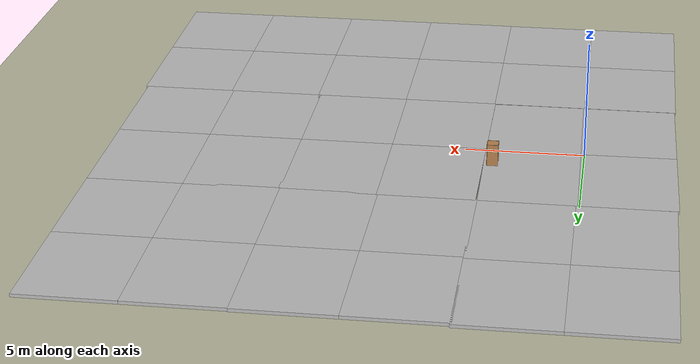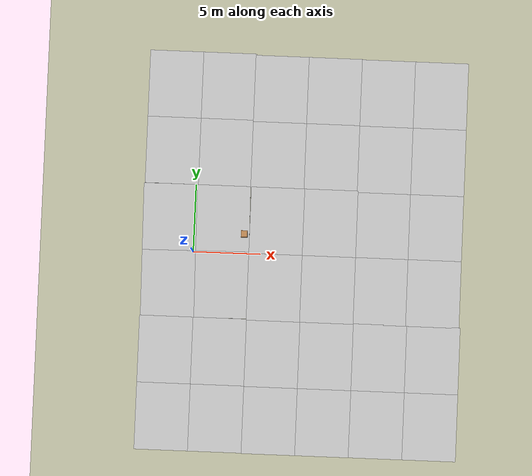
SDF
<sdf version="1.7">
 <world name="default">
  <model name="ground_plane_residential">
   <static>1</static>
   <link name="link">
    <collision name="collision">
     <geometry><plane><normal>0 0 1</normal><size>100 100</size></plane></geometry>
     <surface><friction><ode><mu>100</mu><mu2>50</mu2></ode></friction></surface>
    </collision>
    <visual name="visual">
     <cast_shadows>0</cast_shadows>
     <geometry><plane><normal>0 0 1</normal><size>100 100</size></plane></geometry>
     <material>
      <script><uri>file://media/materials/scripts/gazebo.material</uri><name>Gazebo/Residential</name></script>
     </material>
    </visual>
   </link>
  </model>
  <model name="mud_box">
   <static>1</static>
   <link name="link">
    <collision name="collision"><geometry><box><size>8 10 0.2</size></box></geometry></collision>
    <visual name="visual_1">
     <pose>-2 2.5 0 0 -0 0</pose>
     <cast_shadows>0</cast_shadows>
     <geometry><box><size>4 5 0.2</size></box></geometry>
     <material>
      <script>
       <uri>model://mud_box/materials/scripts</uri>
       <uri>model://mud_box/materials/textures</uri>
       <name>vrc/mud</name>
      </script>
     </material>
    </visual>
    <visual name="visual_2">
     <pose>2 2.5 0 0 -0 0</pose>
     <cast_shadows>0</cast_shadows>
     <geometry><box><size>4 5 0.2</size></box></geometry>
     <material>
      <script>
       <uri>model://mud_box/materials/scripts</uri>
       <uri>model://mud_box/materials/textures</uri>
       <name>vrc/mud</name>
      </script>
     </material>
    </visual>
    <visual name="visual_3">
     <pose>2 -2.5 0 0 -0 0</pose>
     <cast_shadows>0</cast_shadows>
     <geometry><box><size>4 5 0.2</size></box></geometry>
     <material>
      <script>
       <uri>model://mud_box/materials/scripts</uri>
       <uri>model://mud_box/materials/textures</uri>
       <name>vrc/mud</name>
      </script>
     </material>
    </visual>
    <visual name="visual_4">
     <pose>-2 -2.5 0 0 -0 0</pose>
     <cast_shadows>0</cast_shadows>
     <geometry><box><size>4 5 0.2</size></box></geometry>
     <material>
      <script>
       <uri>model://mud_box/materials/scripts</uri>
       <uri>model://mud_box/materials/textures</uri>
       <name>vrc/mud</name>
      </script>
     </material>
    </visual>
   </link>
   <pose>0.145927 0.080727 -0.006154 0 0 -3.12791</pose>
  </model>
  <model name="mud_box_clone">
   <static>1</static>
   <link name="link">
    <collision name="collision"><geometry><box><size>8 10 0.2</size></box></geometry></collision>
    <visual name="visual_1">
     <pose>-2 2.5 0 0 -0 0</pose>
     <cast_shadows>0</cast_shadows>
     <geometry><box><size>4 5 0.2</size></box></geometry>
     <material>
      <script>
       <uri>model://mud_box/materials/scripts</uri>
       <uri>model://mud_box/materials/textures</uri>
       <name>vrc/mud</name>
      </script>
     </material>
    </visual>
    <visual name="visual_2">
     <pose>2 2.5 0 0 -0 0</pose>
     <cast_shadows>0</cast_shadows>
     <geometry><box><size>4 5 0.2</size></box></geometry>
     <material>
      <script>
       <uri>model://mud_box/materials/scripts</uri>
       <uri>model://mud_box/materials/textures</uri>
       <name>vrc/mud</name>
      </script>
     </material>
    </visual>
    <visual name="visual_3">
     <pose>2 -2.5 0 0 -0 0</pose>
     <cast_shadows>0</cast_shadows>
     <geometry><box><size>4 5 0.2</size></box></geometry>
     <material>
      <script>
       <uri>model://mud_box/materials/scripts</uri>
       <uri>model://mud_box/materials/textures</uri>
       <name>vrc/mud</name>
      </script>
     </material>
    </visual>
    <visual name="visual_4">
     <pose>-2 -2.5 0 0 -0 0</pose>
     <cast_shadows>0</cast_shadows>
     <geometry><box><size>4 5 0.2</size></box></geometry>
     <material>
      <script>
       <uri>model://mud_box/materials/scripts</uri>
       <uri>model://mud_box/materials/textures</uri>
       <name>vrc/mud</name>
      </script>
     </material>
    </visual>
   </link>
   <pose>8.13313 0.040261 0 0 -0 0</pose>
  </model>
  <model name="mud_box_clone_0">
   <static>1</static>
   <link name="link">
    <collision name="collision"><geometry><box><size>8 10 0.2</size></box></geometry></collision>
    <visual name="visual_1">
     <pose>-2 2.5 0 0 -0 0</pose>
     <cast_shadows>0</cast_shadows>
     <geometry><box><size>4 5 0.2</size></box></geometry>
     <material>
      <script>
       <uri>model://mud_box/materials/scripts</uri>
       <uri>model://mud_box/materials/textures</uri>
       <name>vrc/mud</name>
      </script>
     </material>
    </visual>
    <visual name="visual_2">
     <pose>2 2.5 0 0 -0 0</pose>
     <cast_shadows>0</cast_shadows>
     <geometry><box><size>4 5 0.2</size></box></geometry>
     <material>
      <script>
       <uri>model://mud_box/materials/scripts</uri>
       <uri>model://mud_box/materials/textures</uri>
       <name>vrc/mud</name>
      </script>
     </material>
    </visual>
    <visual name="visual_3">
     <pose>2 -2.5 0 0 -0 0</pose>
     <cast_shadows>0</cast_shadows>
     <geometry><box><size>4 5 0.2</size></box></geometry>
     <material>
      <script>
       <uri>model://mud_box/materials/scripts</uri>
       <uri>model://mud_box/materials/textures</uri>
       <name>vrc/mud</name>
      </script>
     </material>
    </visual>
    <visual name="visual_4">
     <pose>-2 -2.5 0 0 -0 0</pose>
     <cast_shadows>0</cast_shadows>
     <geometry><box><size>4 5 0.2</size></box></geometry>
     <material>
      <script>
       <uri>model://mud_box/materials/scripts</uri>
       <uri>model://mud_box/materials/textures</uri>
       <name>vrc/mud</name>
      </script>
     </material>
    </visual>
   </link>
   <pose>0.148449 10.0486 0 0 -0 0</pose>
  </model>
  <model name="mud_box_clone_1">
   <static>1</static>
   <link name="link">
    <collision name="collision"><geometry><box><size>8 10 0.2</size></box></geometry></collision>
    <visual name="visual_1">
     <pose>-2 2.5 0 0 -0 0</pose>
     <cast_shadows>0</cast_shadows>
     <geometry><box><size>4 5 0.2</size></box></geometry>
     <material>
      <script>
       <uri>model://mud_box/materials/scripts</uri>
       <uri>model://mud_box/materials/textures</uri>
       <name>vrc/mud</name>
      </script>
     </material>
    </visual>
    <visual name="visual_2">
     <pose>2 2.5 0 0 -0 0</pose>
     <cast_shadows>0</cast_shadows>
     <geometry><box><size>4 5 0.2</size></box></geometry>
     <material>
      <script>
       <uri>model://mud_box/materials/scripts</uri>
       <uri>model://mud_box/materials/textures</uri>
       <name>vrc/mud</name>
      </script>
     </material>
    </visual>
    <visual name="visual_3">
     <pose>2 -2.5 0 0 -0 0</pose>
     <cast_shadows>0</cast_shadows>
     <geometry><box><size>4 5 0.2</size></box></geometry>
     <material>
      <script>
       <uri>model://mud_box/materials/scripts</uri>
       <uri>model://mud_box/materials/textures</uri>
       <name>vrc/mud</name>
      </script>
     </material>
    </visual>
    <visual name="visual_4">
     <pose>-2 -2.5 0 0 -0 0</pose>
     <cast_shadows>0</cast_shadows>
     <geometry><box><size>4 5 0.2</size></box></geometry>
     <material>
      <script>
       <uri>model://mud_box/materials/scripts</uri>
       <uri>model://mud_box/materials/textures</uri>
       <name>vrc/mud</name>
      </script>
     </material>
    </visual>
   </link>
   <pose>8.07362 9.95569 0 0 -0 0</pose>
  </model>
  <model name="mud_box_clone_2">
   <static>1</static>
   <link name="link">
    <collision name="collision"><geometry><box><size>8 10 0.2</size></box></geometry></collision>
    <visual name="visual_1">
     <pose>-2 2.5 0 0 -0 0</pose>
     <cast_shadows>0</cast_shadows>
     <geometry><box><size>4 5 0.2</size></box></geometry>
     <material>
      <script>
       <uri>model://mud_box/materials/scripts</uri>
       <uri>model://mud_box/materials/textures</uri>
       <name>vrc/mud</name>
      </script>
     </material>
    </visual>
    <visual name="visual_2">
     <pose>2 2.5 0 0 -0 0</pose>
     <cast_shadows>0</cast_shadows>
     <geometry><box><size>4 5 0.2</size></box></geometry>
     <material>
      <script>
       <uri>model://mud_box/materials/scripts</uri>
       <uri>model://mud_box/materials/textures</uri>
       <name>vrc/mud</name>
      </script>
     </material>
    </visual>
    <visual name="visual_3">
     <pose>2 -2.5 0 0 -0 0</pose>
     <cast_shadows>0</cast_shadows>
     <geometry><box><size>4 5 0.2</size></box></geometry>
     <material>
      <script>
       <uri>model://mud_box/materials/scripts</uri>
       <uri>model://mud_box/materials/textures</uri>
       <name>vrc/mud</name>
      </script>
     </material>
    </visual>
    <visual name="visual_4">
     <pose>-2 -2.5 0 0 -0 0</pose>
     <cast_shadows>0</cast_shadows>
     <geometry><box><size>4 5 0.2</size></box></geometry>
     <material>
      <script>
       <uri>model://mud_box/materials/scripts</uri>
       <uri>model://mud_box/materials/textures</uri>
       <name>vrc/mud</name>
      </script>
     </material>
    </visual>
   </link>
   <pose>16.0685 9.92775 0 0 -0 0</pose>
  </model>
  <model name="mud_box_clone_3">
   <static>1</static>
   <link name="link">
    <collision name="collision"><geometry><box><size>8 10 0.2</size></box></geometry></collision>
    <visual name="visual_1">
     <pose>-2 2.5 0 0 -0 0</pose>
     <cast_shadows>0</cast_shadows>
     <geometry><box><size>4 5 0.2</size></box></geometry>
     <material>
      <script>
       <uri>model://mud_box/materials/scripts</uri>
       <uri>model://mud_box/materials/textures</uri>
       <name>vrc/mud</name>
      </script>
     </material>
    </visual>
    <visual name="visual_2">
     <pose>2 2.5 0 0 -0 0</pose>
     <cast_shadows>0</cast_shadows>
     <geometry><box><size>4 5 0.2</size></box></geometry>
     <material>
      <script>
       <uri>model://mud_box/materials/scripts</uri>
       <uri>model://mud_box/materials/textures</uri>
       <name>vrc/mud</name>
      </script>
     </material>
    </visual>
    <visual name="visual_3">
     <pose>2 -2.5 0 0 -0 0</pose>
     <cast_shadows>0</cast_shadows>
     <geometry><box><size>4 5 0.2</size></box></geometry>
     <material>
      <script>
       <uri>model://mud_box/materials/scripts</uri>
       <uri>model://mud_box/materials/textures</uri>
       <name>vrc/mud</name>
      </script>
     </material>
    </visual>
    <visual name="visual_4">
     <pose>-2 -2.5 0 0 -0 0</pose>
     <cast_shadows>0</cast_shadows>
     <geometry><box><size>4 5 0.2</size></box></geometry>
     <material>
      <script>
       <uri>model://mud_box/materials/scripts</uri>
       <uri>model://mud_box/materials/textures</uri>
       <name>vrc/mud</name>
      </script>
     </material>
    </visual>
   </link>
   <pose>16.0611 0.046412 0 0 -0 0</pose>
  </model>
  <model name="mud_box_clone_7">
   <static>1</static>
   <link name="link">
    <collision name="collision"><geometry><box><size>8 10 0.2</size></box></geometry></collision>
    <visual name="visual_1">
     <pose>-2 2.5 0 0 -0 0</pose>
     <cast_shadows>0</cast_shadows>
     <geometry><box><size>4 5 0.2</size></box></geometry>
     <material>
      <script>
       <uri>model://mud_box/materials/scripts</uri>
       <uri>model://mud_box/materials/textures</uri>
       <name>vrc/mud</name>
      </script>
     </material>
    </visual>
    <visual name="visual_2">
     <pose>2 2.5 0 0 -0 0</pose>
     <cast_shadows>0</cast_shadows>
     <geometry><box><size>4 5 0.2</size></box></geometry>
     <material>
      <script>
       <uri>model://mud_box/materials/scripts</uri>
       <uri>model://mud_box/materials/textures</uri>
       <name>vrc/mud</name>
      </script>
     </material>
    </visual>
    <visual name="visual_3">
     <pose>2 -2.5 0 0 -0 0</pose>
     <cast_shadows>0</cast_shadows>
     <geometry><box><size>4 5 0.2</size></box></geometry>
     <material>
      <script>
       <uri>model://mud_box/materials/scripts</uri>
       <uri>model://mud_box/materials/textures</uri>
       <name>vrc/mud</name>
      </script>
     </material>
    </visual>
    <visual name="visual_4">
     <pose>-2 -2.5 0 0 -0 0</pose>
     <cast_shadows>0</cast_shadows>
     <geometry><box><size>4 5 0.2</size></box></geometry>
     <material>
      <script>
       <uri>model://mud_box/materials/scripts</uri>
       <uri>model://mud_box/materials/textures</uri>
       <name>vrc/mud</name>
      </script>
     </material>
    </visual>
   </link>
   <pose>0.164757 -9.89017 0 0 -0 0</pose>
  </model>
  <model name="mud_box_clone_8">
   <static>1</static>
   <link name="link">
    <collision name="collision"><geometry><box><size>8 10 0.2</size></box></geometry></collision>
    <visual name="visual_1">
     <pose>-2 2.5 0 0 -0 0</pose>
     <cast_shadows>0</cast_shadows>
     <geometry><box><size>4 5 0.2</size></box></geometry>
     <material>
      <script>
       <uri>model://mud_box/materials/scripts</uri>
       <uri>model://mud_box/materials/textures</uri>
       <name>vrc/mud</name>
      </script>
     </material>
    </visual>
    <visual name="visual_2">
     <pose>2 2.5 0 0 -0 0</pose>
     <cast_shadows>0</cast_shadows>
     <geometry><box><size>4 5 0.2</size></box></geometry>
     <material>
      <script>
       <uri>model://mud_box/materials/scripts</uri>
       <uri>model://mud_box/materials/textures</uri>
       <name>vrc/mud</name>
      </script>
     </material>
    </visual>
    <visual name="visual_3">
     <pose>2 -2.5 0 0 -0 0</pose>
     <cast_shadows>0</cast_shadows>
     <geometry><box><size>4 5 0.2</size></box></geometry>
     <material>
      <script>
       <uri>model://mud_box/materials/scripts</uri>
       <uri>model://mud_box/materials/textures</uri>
       <name>vrc/mud</name>
      </script>
     </material>
    </visual>
    <visual name="visual_4">
     <pose>-2 -2.5 0 0 -0 0</pose>
     <cast_shadows>0</cast_shadows>
     <geometry><box><size>4 5 0.2</size></box></geometry>
     <material>
      <script>
       <uri>model://mud_box/materials/scripts</uri>
       <uri>model://mud_box/materials/textures</uri>
       <name>vrc/mud</name>
      </script>
     </material>
    </visual>
   </link>
   <pose>8.16438 -9.91723 0 0 -0 0</pose>
  </model>
  <model name="mud_box_clone_9">
   <static>1</static>
   <link name="link">
    <collision name="collision"><geometry><box><size>8 10 0.2</size></box></geometry></collision>
    <visual name="visual_1">
     <pose>-2 2.5 0 0 -0 0</pose>
     <cast_shadows>0</cast_shadows>
     <geometry><box><size>4 5 0.2</size></box></geometry>
     <material>
      <script>
       <uri>model://mud_box/materials/scripts</uri>
       <uri>model://mud_box/materials/textures</uri>
       <name>vrc/mud</name>
      </script>
     </material>
    </visual>
    <visual name="visual_2">
     <pose>2 2.5 0 0 -0 0</pose>
     <cast_shadows>0</cast_shadows>
     <geometry><box><size>4 5 0.2</size></box></geometry>
     <material>
      <script>
       <uri>model://mud_box/materials/scripts</uri>
       <uri>model://mud_box/materials/textures</uri>
       <name>vrc/mud</name>
      </script>
     </material>
    </visual>
    <visual name="visual_3">
     <pose>2 -2.5 0 0 -0 0</pose>
     <cast_shadows>0</cast_shadows>
     <geometry><box><size>4 5 0.2</size></box></geometry>
     <material>
      <script>
       <uri>model://mud_box/materials/scripts</uri>
       <uri>model://mud_box/materials/textures</uri>
       <name>vrc/mud</name>
      </script>
     </material>
    </visual>
    <visual name="visual_4">
     <pose>-2 -2.5 0 0 -0 0</pose>
     <cast_shadows>0</cast_shadows>
     <geometry><box><size>4 5 0.2</size></box></geometry>
     <material>
      <script>
       <uri>model://mud_box/materials/scripts</uri>
       <uri>model://mud_box/materials/textures</uri>
       <name>vrc/mud</name>
      </script>
     </material>
    </visual>
   </link>
   <pose>16.1563 -9.91423 0 0 -0 0</pose>
  </model>
  <model name="cabinet_clone_0">
   <static>1</static>
   <link name="cabinet_bottom_plate">
    <inertial>
     <pose>0 0 -1 0 -0 0</pose>
     <inertia><ixx>2.05</ixx><ixy>0</ixy><ixz>0</ixz><iyy>2.05</iyy><iyz>0</iyz><izz>2.05</izz></inertia>
     <mass>25</mass>
    </inertial>
    <collision name="cabinet_bottom_plate_geom">
     <pose>0 0 0.01 0 -0 0</pose>
     <geometry><box><size>0.45 0.45 0.02</size></box></geometry>
    </collision>
    <visual name="cabinet_bottom_plate_geom_visual">
     <pose>0 0 0.01 0 -0 0</pose>
     <geometry><box><size>0.45 0.45 0.02</size></box></geometry>
     <material>
      <script><uri>file://media/materials/scripts/gazebo.material</uri><name>Gazebo/Wood</name></script>
     </material>
    </visual>
    <collision name="cabinet_bottom_plate_geom_cabinet_back_plate">
     <pose>0.235 0 0.51 0 -0 0</pose>
     <geometry><box><size>0.02 0.45 1.02</size></box></geometry>
    </collision>
    <visual name="cabinet_bottom_plate_geom_cabinet_back_plate_visual">
     <pose>0.235 0 0.51 0 -0 0</pose>
     <geometry><box><size>0.02 0.45 1.02</size></box></geometry>
     <material>
      <script><uri>file://media/materials/scripts/gazebo.material</uri><name>Gazebo/Wood</name></script>
     </material>
    </visual>
    <collision name="cabinet_bottom_plate_geom_cabinet_left_plate">
     <pose>0 0.235 0.51 0 -0 0</pose>
     <geometry><box><size>0.45 0.02 1.02</size></box></geometry>
    </collision>
    <visual name="cabinet_bottom_plate_geom_cabinet_left_plate_visual">
     <pose>0 0.235 0.51 0 -0 0</pose>
     <geometry><box><size>0.45 0.02 1.02</size></box></geometry>
     <material>
      <script><uri>file://media/materials/scripts/gazebo.material</uri><name>Gazebo/Wood</name></script>
     </material>
    </visual>
    <collision name="cabinet_bottom_plate_geom_cabinet_middle_plate">
     <pose>0 0 0.51 0 -0 0</pose>
     <geometry><box><size>0.45 0.45 0.02</size></box></geometry>
    </collision>
    <visual name="cabinet_bottom_plate_geom_cabinet_middle_plate_visual">
     <pose>0 0 0.51 0 -0 0</pose>
     <geometry><box><size>0.45 0.45 0.02</size></box></geometry>
     <material>
      <script><uri>file://media/materials/scripts/gazebo.material</uri><name>Gazebo/Wood</name></script>
     </material>
    </visual>
    <collision name="cabinet_bottom_plate_geom_cabinet_right_plate">
     <pose>0 -0.235 0.51 0 -0 0</pose>
     <geometry><box><size>0.45 0.02 1.02</size></box></geometry>
    </collision>
    <visual name="cabinet_bottom_plate_geom_cabinet_right_plate_visual">
     <pose>0 -0.235 0.51 0 -0 0</pose>
     <geometry><box><size>0.45 0.02 1.02</size></box></geometry>
     <material>
      <script><uri>file://media/materials/scripts/gazebo.material</uri><name>Gazebo/Wood</name></script>
     </material>
    </visual>
    <collision name="cabinet_bottom_plate_geom_cabinet_top_plate">
     <pose>0 0 1.01 0 -0 0</pose>
     <geometry><box><size>0.45 0.45 0.02</size></box></geometry>
    </collision>
    <visual name="cabinet_bottom_plate_geom_cabinet_top_plate_visual">
     <pose>0 0 1.01 0 -0 0</pose>
     <geometry><box><size>0.45 0.45 0.02</size></box></geometry>
     <material>
      <script><uri>file://media/materials/scripts/gazebo.material</uri><name>Gazebo/Wood</name></script>
     </material>
    </visual>
   </link>
   <pose>3.74775 1.43559 0 0 -0 0</pose>
  </model>
 </world>
</sdf>
